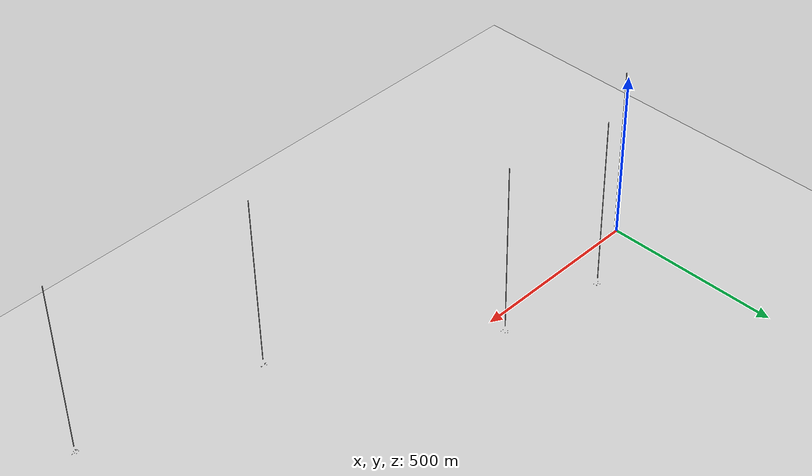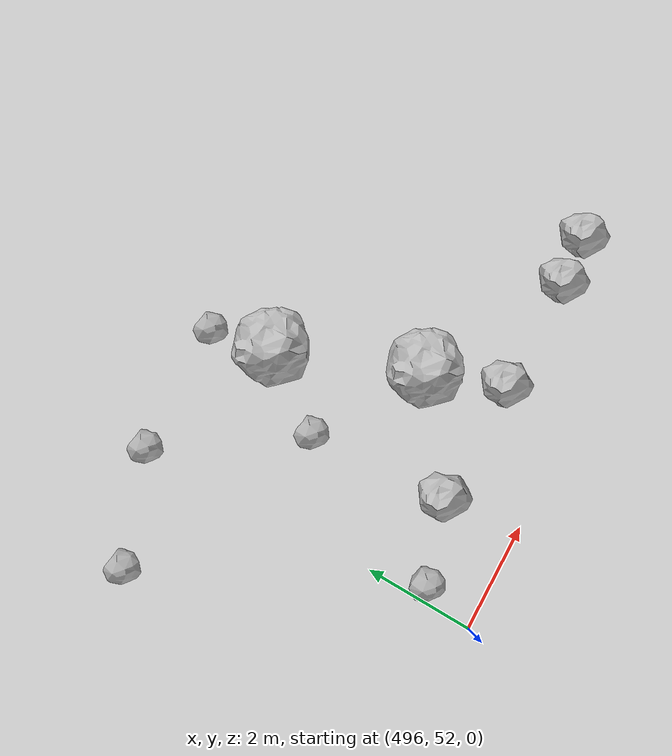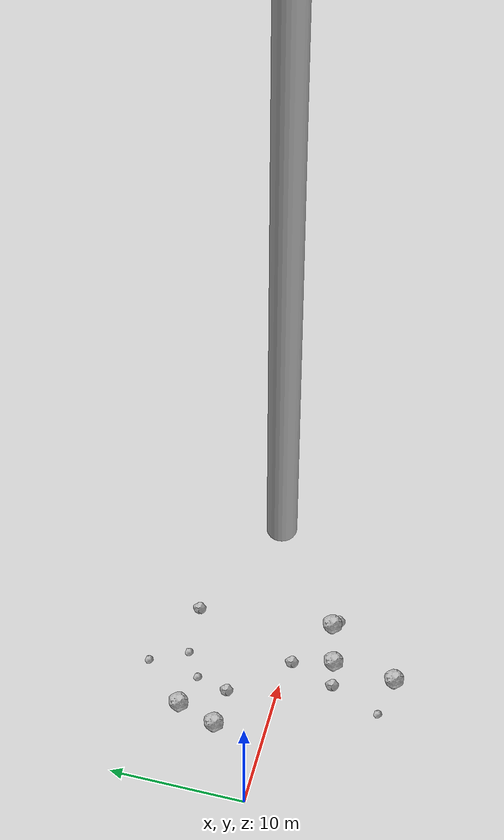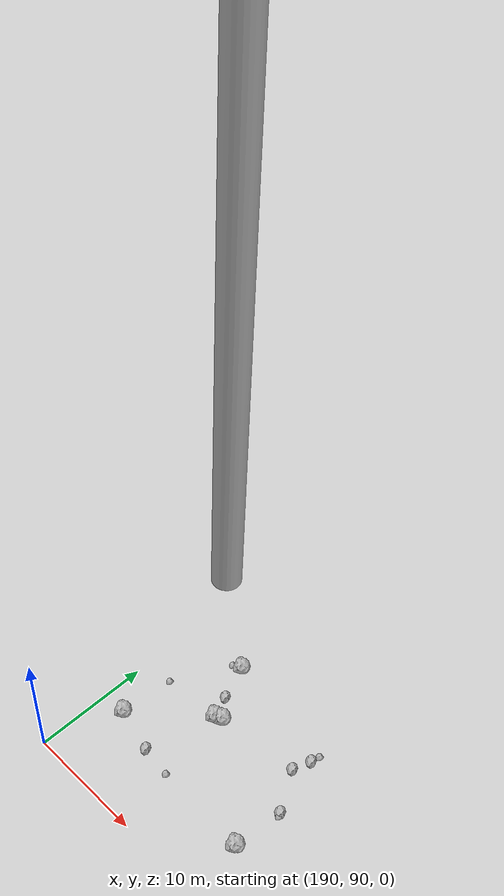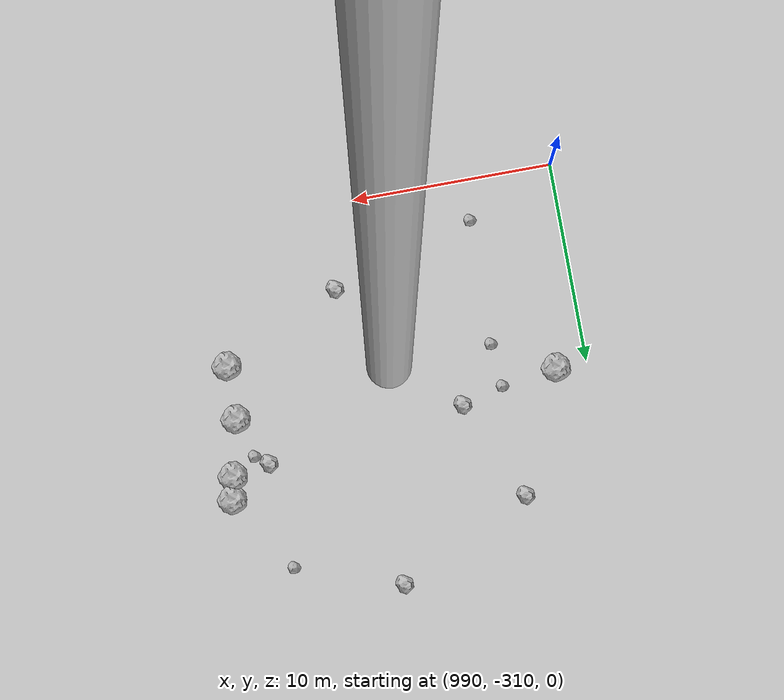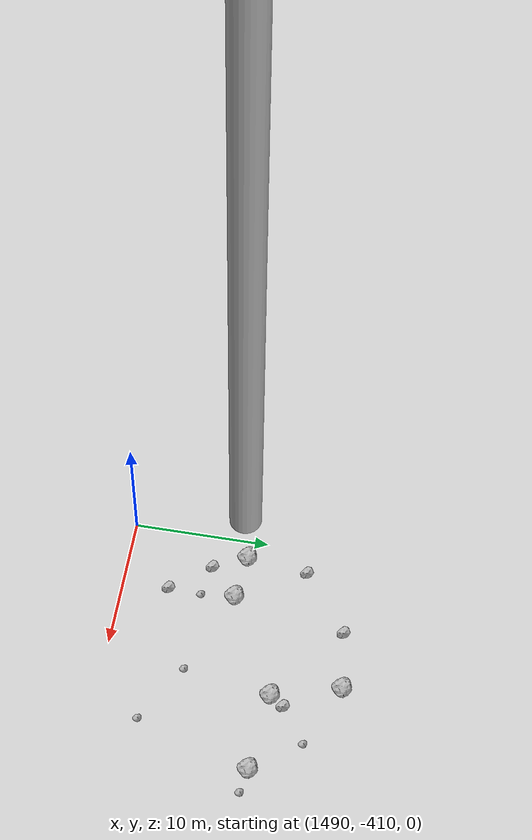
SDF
<?xml version="1.0" ?>
<sdf version="1.6">
  <world name="default">

    <include>
      <uri>model://custom_ground</uri>
    </include>

    <include>
      <uri>model://sun</uri>
    </include>

    <spherical_coordinates>
      <surface_model>EARTH_WGS84</surface_model>
      <latitude_deg>38.161479</latitude_deg>
      <longitude_deg>-122.454630</longitude_deg>
      <elevation>488.0</elevation>
      <heading_deg>90</heading_deg>
    </spherical_coordinates>

    <model name="rock1_0_0">
      <include>
        <uri>model://rock1</uri>
        <pose>16.047958701408767 -2.577042989783271 0.5 0 0 0</pose>
      </include>
    </model>
    <model name="rock1_0_1">
      <include>
        <uri>model://rock1</uri>
        <pose>6.589115984828968 6.737123364656444 0.5 0 0 0</pose>
      </include>
    </model>
    <model name="rock1_0_2">
      <include>
        <uri>model://rock1</uri>
        <pose>12.514845920151474 -8.104304944975002 0.5 0 0 0</pose>
      </include>
    </model>
    <model name="rock1_0_3">
      <include>
        <uri>model://rock1</uri>
        <pose>12.88314109040996 -3.417103444555048 0.5 0 0 0</pose>
      </include>
    </model>
    <model name="rock1_0_4">
      <include>
        <uri>model://rock1</uri>
        <pose>5.588612488728559 3.7915849349195785 0.5 0 0 0</pose>
      </include>
    </model>
    <model name="rock2_0_0">
      <include>
        <uri>model://rock2</uri>
        <pose>16.444972161402646 -2.9644465601481222 0.3 0 0 0</pose>
      </include>
    </model>
    <model name="rock2_0_1">
      <include>
        <uri>model://rock2</uri>
        <pose>14.9774167470141 7.486908497389262 0.3 0 0 0</pose>
      </include>
    </model>
    <model name="rock2_0_2">
      <include>
        <uri>model://rock2</uri>
        <pose>12.106402502550875 -0.4206839190567848 0.3 0 0 0</pose>
      </include>
    </model>
    <model name="rock2_0_3">
      <include>
        <uri>model://rock2</uri>
        <pose>8.518177963256681 3.635765564737472 0.3 0 0 0</pose>
      </include>
    </model>
    <model name="rock2_0_4">
      <include>
        <uri>model://rock2</uri>
        <pose>10.903407750622218 -3.7844898869801984 0.3 0 0 0</pose>
      </include>
    </model>
    <model name="rock3_0_0">
      <include>
        <uri>model://rock3</uri>
        <pose>9.380907460893864 -7.596891529127121 0.2 0 0 0</pose>
      </include>
    </model>
    <model name="rock3_0_1">
      <include>
        <uri>model://rock3</uri>
        <pose>9.650339813900253 9.88807293036626 0.2 0 0 0</pose>
      </include>
    </model>
    <model name="rock3_0_2">
      <include>
        <uri>model://rock3</uri>
        <pose>16.571105712868277 -2.88098766888438 0.2 0 0 0</pose>
      </include>
    </model>
    <model name="rock3_0_3">
      <include>
        <uri>model://rock3</uri>
        <pose>11.037162407945457 7.189112668806899 0.2 0 0 0</pose>
      </include>
    </model>
    <model name="rock3_0_4">
      <include>
        <uri>model://rock3</uri>
        <pose>9.111502579472221 5.98836796359816 0.2 0 0 0</pose>
      </include>
    </model>
    <model name="rock1_1_0">
      <include>
        <uri>model://rock1</uri>
        <pose>195.9919367139655 106.40899961532087 0.5 0 0 0</pose>
      </include>
    </model>
    <model name="rock1_1_1">
      <include>
        <uri>model://rock1</uri>
        <pose>206.79458797662852 94.6684290867975 0.5 0 0 0</pose>
      </include>
    </model>
    <model name="rock1_1_2">
      <include>
        <uri>model://rock1</uri>
        <pose>197.8057304920941 101.38260678491217 0.5 0 0 0</pose>
      </include>
    </model>
    <model name="rock1_1_3">
      <include>
        <uri>model://rock1</uri>
        <pose>192.3081329040555 96.38718984496023 0.5 0 0 0</pose>
      </include>
    </model>
    <model name="rock1_1_4">
      <include>
        <uri>model://rock1</uri>
        <pose>198.42894631703658 101.6430955113004 0.5 0 0 0</pose>
      </include>
    </model>
    <model name="rock2_1_0">
      <include>
        <uri>model://rock2</uri>
        <pose>207.2685318155733 98.97849409562106 0.3 0 0 0</pose>
      </include>
    </model>
    <model name="rock2_1_1">
      <include>
        <uri>model://rock2</uri>
        <pose>205.4265542525841 102.3572242130585 0.3 0 0 0</pose>
      </include>
    </model>
    <model name="rock2_1_2">
      <include>
        <uri>model://rock2</uri>
        <pose>196.14841900927343 95.38710279941537 0.3 0 0 0</pose>
      </include>
    </model>
    <model name="rock2_1_3">
      <include>
        <uri>model://rock2</uri>
        <pose>205.98892990748746 103.9174189527619 0.3 0 0 0</pose>
      </include>
    </model>
    <model name="rock2_1_4">
      <include>
        <uri>model://rock2</uri>
        <pose>197.08957231642867 103.34798525516912 0.3 0 0 0</pose>
      </include>
    </model>
    <model name="rock3_1_0">
      <include>
        <uri>model://rock3</uri>
        <pose>198.85925059174798 95.0006796322365 0.2 0 0 0</pose>
      </include>
    </model>
    <model name="rock3_1_1">
      <include>
        <uri>model://rock3</uri>
        <pose>206.1525764978098 104.69755448640699 0.2 0 0 0</pose>
      </include>
    </model>
    <model name="rock3_1_2">
      <include>
        <uri>model://rock3</uri>
        <pose>207.36060001797384 98.68471265464161 0.2 0 0 0</pose>
      </include>
    </model>
    <model name="rock3_1_3">
      <include>
        <uri>model://rock3</uri>
        <pose>192.6878687320407 101.14197621986159 0.2 0 0 0</pose>
      </include>
    </model>
    <model name="rock3_1_4">
      <include>
        <uri>model://rock3</uri>
        <pose>195.17623600117918 106.09702751887359 0.2 0 0 0</pose>
      </include>
    </model>
    <model name="rock1_2_0">
      <include>
        <uri>model://rock1</uri>
        <pose>505.7905684346572 41.94955998348725 0.5 0 0 0</pose>
      </include>
    </model>
    <model name="rock1_2_1">
      <include>
        <uri>model://rock1</uri>
        <pose>499.6842780411276 54.91047281326004 0.5 0 0 0</pose>
      </include>
    </model>
    <model name="rock1_2_2">
      <include>
        <uri>model://rock1</uri>
        <pose>497.2490535433469 41.208722104262755 0.5 0 0 0</pose>
      </include>
    </model>
    <model name="rock1_2_3">
      <include>
        <uri>model://rock1</uri>
        <pose>492.05174857978375 52.990368685174964 0.5 0 0 0</pose>
      </include>
    </model>
    <model name="rock1_2_4">
      <include>
        <uri>model://rock1</uri>
        <pose>498.6280457499255 57.56964836428652 0.5 0 0 0</pose>
      </include>
    </model>
    <model name="rock2_2_0">
      <include>
        <uri>model://rock2</uri>
        <pose>497.7941265335587 53.48887473913828 0.3 0 0 0</pose>
      </include>
    </model>
    <model name="rock2_2_1">
      <include>
        <uri>model://rock2</uri>
        <pose>503.5506594149778 53.52699164330123 0.3 0 0 0</pose>
      </include>
    </model>
    <model name="rock2_2_2">
      <include>
        <uri>model://rock2</uri>
        <pose>500.18818491440317 53.47665633942814 0.3 0 0 0</pose>
      </include>
    </model>
    <model name="rock2_2_3">
      <include>
        <uri>model://rock2</uri>
        <pose>494.3084899219275 45.99192199695305 0.3 0 0 0</pose>
      </include>
    </model>
    <model name="rock2_2_4">
      <include>
        <uri>model://rock2</uri>
        <pose>502.52526130693815 53.45698388632512 0.3 0 0 0</pose>
      </include>
    </model>
    <model name="rock3_2_0">
      <include>
        <uri>model://rock3</uri>
        <pose>496.28371674576067 52.98009626231541 0.2 0 0 0</pose>
      </include>
    </model>
    <model name="rock3_2_1">
      <include>
        <uri>model://rock3</uri>
        <pose>497.57837654377886 56.133879734996825 0.2 0 0 0</pose>
      </include>
    </model>
    <model name="rock3_2_2">
      <include>
        <uri>model://rock3</uri>
        <pose>498.3440966639697 58.83304481459567 0.2 0 0 0</pose>
      </include>
    </model>
    <model name="rock3_2_3">
      <include>
        <uri>model://rock3</uri>
        <pose>493.86798903186843 57.819473886671375 0.2 0 0 0</pose>
      </include>
    </model>
    <model name="rock3_2_4">
      <include>
        <uri>model://rock3</uri>
        <pose>495.8450375934534 58.655853074794166 0.2 0 0 0</pose>
      </include>
    </model>
    <model name="rock1_3_0">
      <include>
        <uri>model://rock1</uri>
        <pose>1007.6869322963676 -302.9242713623943 0.5 0 0 0</pose>
      </include>
    </model>
    <model name="rock1_3_1">
      <include>
        <uri>model://rock1</uri>
        <pose>1007.710211030007 -300.25225406120416 0.5 0 0 0</pose>
      </include>
    </model>
    <model name="rock1_3_2">
      <include>
        <uri>model://rock1</uri>
        <pose>1008.5837888882273 -296.3409833638383 0.5 0 0 0</pose>
      </include>
    </model>
    <model name="rock1_3_3">
      <include>
        <uri>model://rock1</uri>
        <pose>991.6056407677651 -299.91380293926505 0.5 0 0 0</pose>
      </include>
    </model>
    <model name="rock1_3_4">
      <include>
        <uri>model://rock1</uri>
        <pose>1008.3482047323951 -297.4867469397794 0.5 0 0 0</pose>
      </include>
    </model>
    <model name="rock2_3_0">
      <include>
        <uri>model://rock2</uri>
        <pose>996.4807113304805 -298.9286370056343 0.3 0 0 0</pose>
      </include>
    </model>
    <model name="rock2_3_1">
      <include>
        <uri>model://rock2</uri>
        <pose>994.2274675058837 -293.9493355246147 0.3 0 0 0</pose>
      </include>
    </model>
    <model name="rock2_3_2">
      <include>
        <uri>model://rock2</uri>
        <pose>1000.9343010472444 -290.6908984487993 0.3 0 0 0</pose>
      </include>
    </model>
    <model name="rock2_3_3">
      <include>
        <uri>model://rock2</uri>
        <pose>1006.467980556856 -297.79087213245083 0.3 0 0 0</pose>
      </include>
    </model>
    <model name="rock2_3_4">
      <include>
        <uri>model://rock2</uri>
        <pose>1001.6924595727513 -305.75332987291995 0.3 0 0 0</pose>
      </include>
    </model>
    <model name="rock3_3_0">
      <include>
        <uri>model://rock3</uri>
        <pose>994.5340601536078 -301.700223697607 0.2 0 0 0</pose>
      </include>
    </model>
    <model name="rock3_3_1">
      <include>
        <uri>model://rock3</uri>
        <pose>1007.1039998730633 -298.30310275213407 0.2 0 0 0</pose>
      </include>
    </model>
    <model name="rock3_3_2">
      <include>
        <uri>model://rock3</uri>
        <pose>994.3533177323884 -299.5312163270241 0.2 0 0 0</pose>
      </include>
    </model>
    <model name="rock3_3_3">
      <include>
        <uri>model://rock3</uri>
        <pose>1006.1500323924043 -292.516151949527 0.2 0 0 0</pose>
      </include>
    </model>
    <model name="rock3_3_4">
      <include>
        <uri>model://rock3</uri>
        <pose>994.434972839282 -307.97382879624365 0.2 0 0 0</pose>
      </include>
    </model>
    <model name="rock1_4_0">
      <include>
        <uri>model://rock1</uri>
        <pose>1502.3391491272246 -397.8122725661258 0.5 0 0 0</pose>
      </include>
    </model>
    <model name="rock1_4_1">
      <include>
        <uri>model://rock1</uri>
        <pose>1508.157723407712 -398.39378846602375 0.5 0 0 0</pose>
      </include>
    </model>
    <model name="rock1_4_2">
      <include>
        <uri>model://rock1</uri>
        <pose>1494.9374264591104 -401.69054046572614 0.5 0 0 0</pose>
      </include>
    </model>
    <model name="rock1_4_3">
      <include>
        <uri>model://rock1</uri>
        <pose>1491.5599403845372 -401.30331698761165 0.5 0 0 0</pose>
      </include>
    </model>
    <model name="rock1_4_4">
      <include>
        <uri>model://rock1</uri>
        <pose>1500.9418355368634 -392.86104434208374 0.5 0 0 0</pose>
      </include>
    </model>
    <model name="rock2_4_0">
      <include>
        <uri>model://rock2</uri>
        <pose>1492.6718589872396 -403.7079314925084 0.3 0 0 0</pose>
      </include>
    </model>
    <model name="rock2_4_1">
      <include>
        <uri>model://rock2</uri>
        <pose>1494.9577757371878 -406.5772002557895 0.3 0 0 0</pose>
      </include>
    </model>
    <model name="rock2_4_2">
      <include>
        <uri>model://rock2</uri>
        <pose>1502.9461257027865 -396.74748326127684 0.3 0 0 0</pose>
      </include>
    </model>
    <model name="rock2_4_3">
      <include>
        <uri>model://rock2</uri>
        <pose>1496.4390386176517 -393.35201583372873 0.3 0 0 0</pose>
      </include>
    </model>
    <model name="rock2_4_4">
      <include>
        <uri>model://rock2</uri>
        <pose>1491.9890478442499 -396.72252609270674 0.3 0 0 0</pose>
      </include>
    </model>
    <model name="rock3_4_0">
      <include>
        <uri>model://rock3</uri>
        <pose>1505.5874747580776 -406.75628636766146 0.2 0 0 0</pose>
      </include>
    </model>
    <model name="rock3_4_1">
      <include>
        <uri>model://rock3</uri>
        <pose>1509.8432674041414 -398.6897814171253 0.2 0 0 0</pose>
      </include>
    </model>
    <model name="rock3_4_2">
      <include>
        <uri>model://rock3</uri>
        <pose>1505.5305352930861 -394.94831254304427 0.2 0 0 0</pose>
      </include>
    </model>
    <model name="rock3_4_3">
      <include>
        <uri>model://rock3</uri>
        <pose>1495.049755921462 -404.1771373636008 0.2 0 0 0</pose>
      </include>
    </model>
    <model name="rock3_4_4">
      <include>
        <uri>model://rock3</uri>
        <pose>1501.2290465836877 -404.2517730552575 0.2 0 0 0</pose>
      </include>
    </model>

    <model name="cylinder_1">
      <static>true</static>
      <link name="link">
        <visual name="visual">
          <geometry>
            <cylinder>
              <radius>1</radius>
              <length>500</length>
            </cylinder>
          </geometry>
        </visual>
      </link>
      <pose>10 0 270 0 0 0</pose>
    </model>

    <model name="cylinder_2">
      <static>true</static>
      <link name="link">
        <visual name="visual">
          <geometry>
            <cylinder>
              <radius>1</radius>
              <length>500</length>
            </cylinder>
          </geometry>
        </visual>
      </link>
      <pose>200 100 270 0 0 0</pose>
    </model>

    <model name="cylinder_3">
      <static>true</static>
      <link name="link">
        <visual name="visual">
          <geometry>
            <cylinder>
              <radius>1</radius>
              <length>500</length>
            </cylinder>
          </geometry>
        </visual>
      </link>
      <pose>500 50 270 0 0 0</pose>
    </model>

    <model name="cylinder_4">
      <static>true</static>
      <link name="link">
        <visual name="visual">
          <geometry>
            <cylinder>
              <radius>1</radius>
              <length>500</length>
            </cylinder>
          </geometry>
        </visual>
      </link>
      <pose>1000 -300 270 0 0 0</pose>
    </model>

    <model name="cylinder_5">
      <static>true</static>
      <link name="link">
        <visual name="visual">
          <geometry>
            <cylinder>
              <radius>1</radius>
              <length>500</length>
            </cylinder>
          </geometry>
        </visual>
      </link>
      <pose>1500 -400 270 0 0 0</pose>
    </model>

  </world>
</sdf>

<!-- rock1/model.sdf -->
<sdf version="1.6">
  <model name="rock1">
    <static>true</static> <!-- Set to true if the model should not move -->
    <pose>0 0 0 0 0 0</pose>

    <!--z offset is 0.5 for full scale-->

    <link name="link">
      <collision name="rock1_collision">
        <geometry>
          <mesh>
            <uri>model://meshes/rock1.dae</uri>
          </mesh>
        </geometry>
      </collision>
      <visual name="rock1_visual">
        <geometry>
          <mesh>
            <uri>model://meshes/rock1.dae</uri>
          </mesh>
        </geometry>
        <material>
          <script>
            <uri>model://materials/scripts/sand_pebbles.material</uri>
            <name>custom_ground/Image</name>
          </script>
        </material>
      </visual>
    </link>
  </model>
</sdf>

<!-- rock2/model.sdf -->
<sdf version="1.6">
  <model name="rock2">
    <static>true</static> <!-- Set to true if the model should not move -->
    <pose>0 0 0 0 0 0</pose>

    <!--z offset is 0.3 for full scale-->

    <link name="link">
      <collision name="rock2_collision">
        <geometry>
          <mesh>
            <uri>model://meshes/rock2.dae</uri>
          </mesh>
        </geometry>
      </collision>
      <visual name="rock2_visual">
        <geometry>
          <mesh>
            <uri>model://meshes/rock2.dae</uri>
          </mesh>
        </geometry>
        <material>
          <script>
            <uri>model://materials/scripts/sand_pebbles.material</uri>
            <name>custom_ground/Image</name>
          </script>
        </material>
      </visual>
    </link>
  </model>
</sdf>

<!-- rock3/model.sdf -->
<sdf version="1.6">
  <model name="rock3">
    <static>true</static> <!-- Set to true if the model should not move -->
    <pose>0 0 0 0 0 0</pose>

    <!--z offset is 0.2 for full scale-->

    <link name="link">
      <collision name="rock3_collision">
        <geometry>
          <mesh>
            <uri>model://meshes/rock3.dae</uri>
          </mesh>
        </geometry>
      </collision>
      <visual name="rock3_visual">
        <geometry>
          <mesh>
            <uri>model://meshes/rock3.dae</uri>
          </mesh>
        </geometry>
        <material>
          <script>
            <uri>model://materials/scripts/sand_pebbles.material</uri>
            <name>custom_ground/Image</name>
          </script>
        </material>
      </visual>
    </link>
  </model>
</sdf>

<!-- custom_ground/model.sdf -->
<sdf version="1.6">
  <model name="custom_ground">
    <static>true</static> <!-- Ground is static and immovable -->
    <link name="ground_link">
      <pose>240 0 0 0 0 0</pose> <!-- Position and orientation relative to the world -->
      <!-- Visual Representation -->
      <visual name="ground_visual">
        <geometry>
          <plane>
            <normal>0 0 1</normal> <!-- Upward facing plane -->
            <size>500 500</size> <!-- Size of the plane -->
          </plane>
        </geometry>
        <material>
          <script>
            <uri>model://materials/scripts/sand_pebbles.material</uri>
            <name>custom_ground/Image</name>
          </script>
        </material>
      </visual>

      <!-- Collision Representation -->
      <collision name="ground_collision">
        <geometry>
          <plane>
            <normal>0 0 1</normal>
            <size>100 100</size>
          </plane>
        </geometry>
      </collision>

    </link>
  </model>
</sdf>
